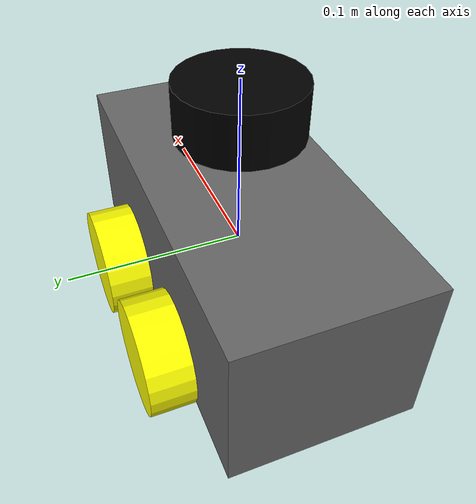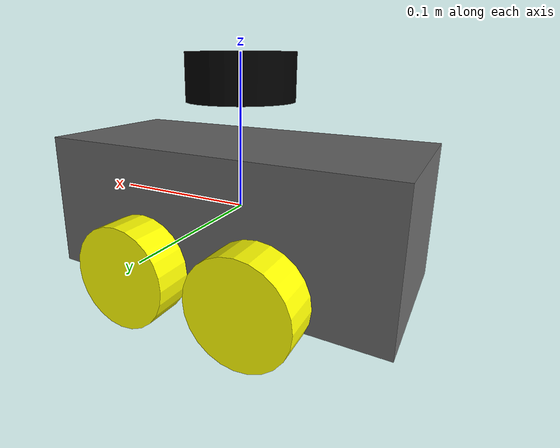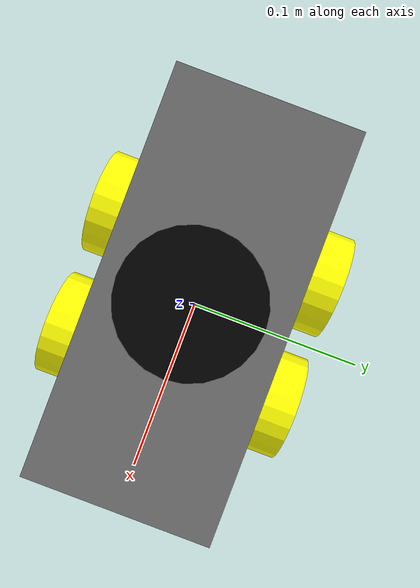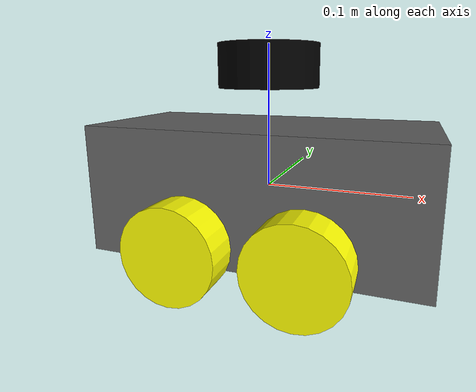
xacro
<?xml version="1.0"?>
<robot xmlns:xacro="http://www.ros.org/wiki/xacro"  name="robot">

    <xacro:arg name="use_ros2_control" default="true"/>
    <xacro:arg name="sim_mode" default="true"/>

    <xacro:include filename="robot_core.xacro" />

    <xacro:if value="$(arg use_ros2_control)">
        <xacro:include filename="ros2_control.xacro" />
    </xacro:if>
    <xacro:unless value="$(arg use_ros2_control)">
        <xacro:include filename="gazebo_control.xacro" />
    </xacro:unless>

    <xacro:include filename="lidar.xacro" />

</robot>

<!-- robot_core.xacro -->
<robot xmlns:xacro="http://www.ros.org/wiki/xacro" >

    <xacro:include filename="inertial_macros.xacro"/>

    <xacro:property name="chassis_length" value="0.230"/>
    <xacro:property name="chassis_width" value="0.105"/>
    <xacro:property name="chassis_height" value="0.090"/>
    <xacro:property name="chassis_mass" value="0.825"/>
    <xacro:property name="wheel_radius" value="0.0325"/>
    <xacro:property name="wheel_thickness" value="0.025"/>
    <xacro:property name="wheel_mass" value="0.050"/>
    <xacro:property name="wheel_offset_x" value="0.040"/>
    <xacro:property name="wheel_offset_y" value="0.065"/>

    <material name="white">
        <color rgba="1 1 1 1" />
    </material>

    <material name="grey">
        <color rgba="0.4 0.4 0.4 1"/>
    </material>

    <material name="black">
        <color rgba="0 0 0 1"/>
    </material>

    <material name="blue">
        <color rgba="0.2 0.2 1 1"/>
    </material>

    <material name="red">
        <color rgba="1 0 0 1"/>
    </material>

    <material name="yellow">
        <color rgba="1 1 0 1"/>
    </material>

    <!-- BASE LINK -->

    <link name="base_link">

    </link>

    <!-- BASE_FOOTPRINT LINK -->

    <joint name="base_footprint_joint" type="fixed">
        <parent link="base_link"/>
        <child link="base_footprint"/>
        <origin xyz="0 0 0" rpy="0 0 0"/>
    </joint>

    <link name="base_footprint">

    </link>

    <!-- CHASSIS -->

    <joint name="chassis_joint" type="fixed">
        <parent link="base_link"/>
        <child link="chassis"/>
        <origin xyz="0 0 0"/>
    </joint>

    <link name="chassis">
        <visual>
            <origin xyz="0 0 0"/>
            <geometry>
                <box size="${chassis_length} ${chassis_width} ${chassis_height}"/>
            </geometry>
            <material name="grey"/>
        </visual>
        <collision>
            <origin xyz="0 0 0"/>
            <geometry>
                <box size="${chassis_length} ${chassis_width} ${chassis_height}"/>
            </geometry>
        </collision>
        <xacro:inertial_box mass="${chassis_mass}" x="${chassis_length}" y="${chassis_width}" z="${chassis_height}">
            <origin xyz="0 0 0" rpy="0 0 0"/>
        </xacro:inertial_box>
    </link>

    <gazebo reference="chassis">
        <material>Gazebo/Grey</material>
    </gazebo>

    <!-- WHEELS -->
    <xacro:macro name="wheel" params="name x y axis rpy_axis">
        <joint name="${name}_joint" type="continuous">
            <parent link="base_link"/>
            <child link="${name}"/>
            <origin xyz="${x} ${y} ${-chassis_height/2 + 0.015}" rpy="${rpy_axis}" />
            <axis xyz="${axis}"/>
        </joint>
        <link name="${name}">
            <visual>
                <geometry>
                    <cylinder radius="${wheel_radius}" length="${wheel_thickness}"/>
                </geometry>
                <material name="yellow"/>
            </visual>
            <collision>
                <geometry>
                    <sphere radius="${wheel_radius}"/>
                </geometry>
            </collision>
            <xacro:inertial_cylinder mass="${wheel_mass}" length="${wheel_thickness}" radius="${wheel_radius}">
                <origin xyz="0 0 0" rpy="0 0 0"/>
            </xacro:inertial_cylinder>
        </link>
        <gazebo reference="${name}">
            <material>Gazebo/Yellow</material>
        </gazebo>
    </xacro:macro>

    <!-- Front Left Wheel -->
    <xacro:wheel name="front_left_wheel" x="${wheel_offset_x}" y="${wheel_offset_y}" axis="0 0 1" rpy_axis="-${pi/2} 0 0"/>

    <!-- Front Right Wheel -->
    <xacro:wheel name="front_right_wheel" x="${wheel_offset_x}" y="-${wheel_offset_y}" axis="0 0 -1" rpy_axis="${pi/2} 0 0"/>

    <!-- Rear Left Wheel -->
    <xacro:wheel name="rear_left_wheel" x="-${wheel_offset_x}" y="${wheel_offset_y}" axis="0 0 1" rpy_axis="-${pi/2} 0 0"/>

    <!-- Rear Right Wheel -->
    <xacro:wheel name="rear_right_wheel" x="-${wheel_offset_x}" y="-${wheel_offset_y}" axis="0 0 -1" rpy_axis="${pi/2} 0 0"/>

</robot>

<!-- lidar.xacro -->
<robot xmlns:xacro="http://www.ros.org/wiki/xacro" >

    <xacro:property name="lidar_radius" value="0.035"/>
    <xacro:property name="lidar_height" value="0.030"/>
    <xacro:property name="lidar_mass" value="0.175"/>
    <xacro:property name="lidar_offset_z" value="0.085"/>
    <xacro:property name="lidar_min_range" value="0.3"/>
    <xacro:property name="lidar_max_range" value="12.0"/>

    <joint name="laser_joint" type="fixed">
        <parent link="chassis"/>
        <child link="laser_frame"/>
        <origin xyz="0 0 ${lidar_offset_z}" rpy="0 0 ${pi}"/>
    </joint>

    <link name="laser_frame">
        <visual>
            <geometry>
                <cylinder radius="${lidar_radius}" length="${lidar_height}"/>
            </geometry>
            <material name="black"/>
        </visual>
        <collision>
            <geometry>
                <cylinder radius="${lidar_radius}" length="${lidar_height}"/>
            </geometry>
        </collision>
        <xacro:inertial_cylinder mass="${lidar_mass}" length="${lidar_height}" radius="${lidar_radius}">
            <origin xyz="0 0 0" rpy="0 0 0"/>
        </xacro:inertial_cylinder>
    </link>

    <gazebo reference="laser_frame">
        <material>Gazebo/Black</material>

        <sensor name="rplidar" type="ray">
            <pose> 0 0 0 0 0 0 </pose>
            <visualize>true</visualize>
            <always_on>true</always_on>
            <update_rate>10</update_rate>
            <ray>
                <scan>
                    <horizontal>
                        <samples>360</samples>
                        <min_angle>-3.14</min_angle>
                        <max_angle>3.14</max_angle>
                    </horizontal>
                </scan>
                <range>
                    <min>${lidar_min_range}</min>
                    <max>${lidar_max_range}</max>
                </range>
            </ray>
            <plugin name="laser_controller" filename="libgazebo_ros_ray_sensor.so">
                <ros>
                    <argument>~/out:=scan</argument>
                </ros>
                <output_type>sensor_msgs/LaserScan</output_type>
                <frame_name>laser_frame</frame_name>
            </plugin>
        </sensor>
    </gazebo>

</robot>
